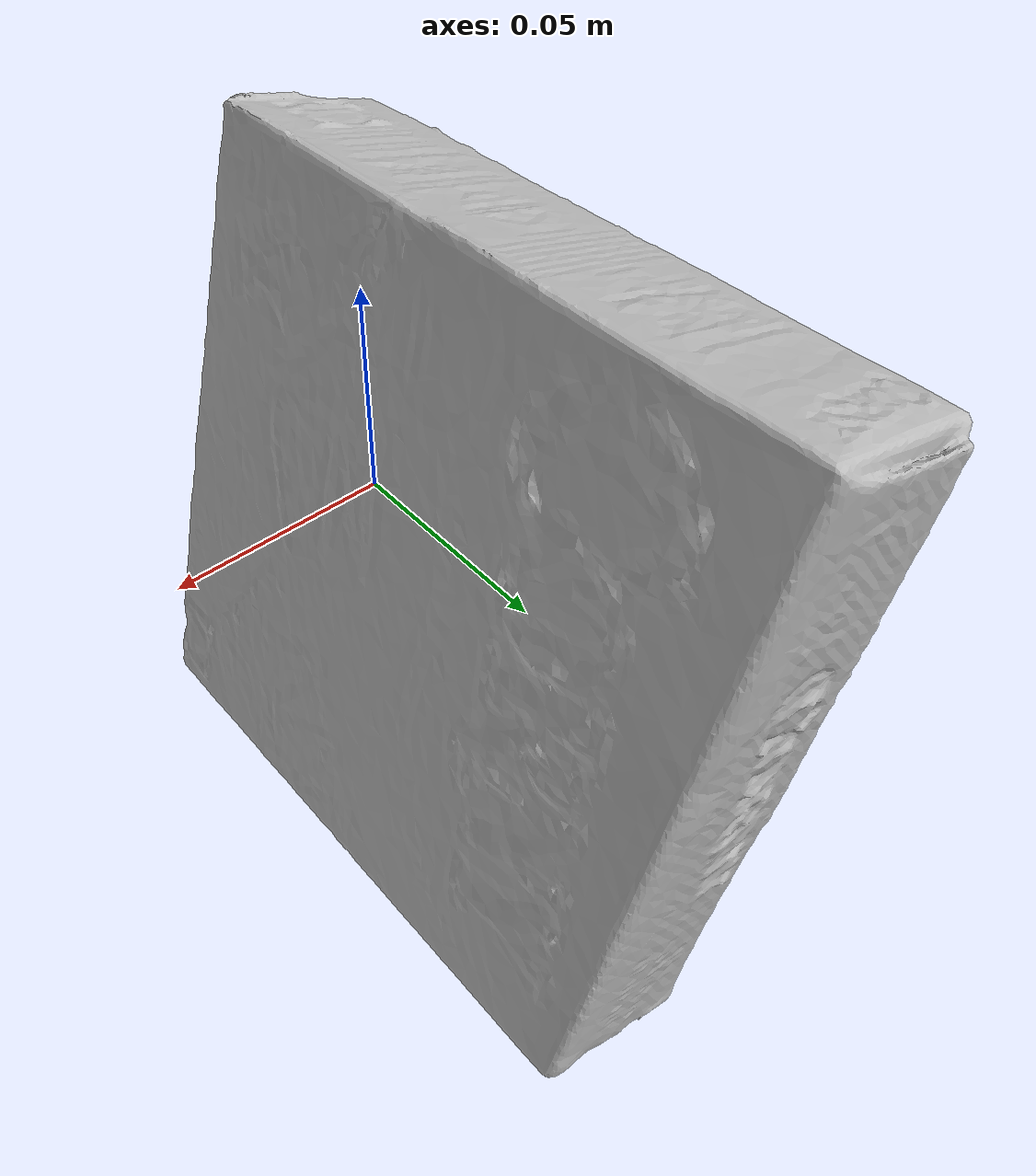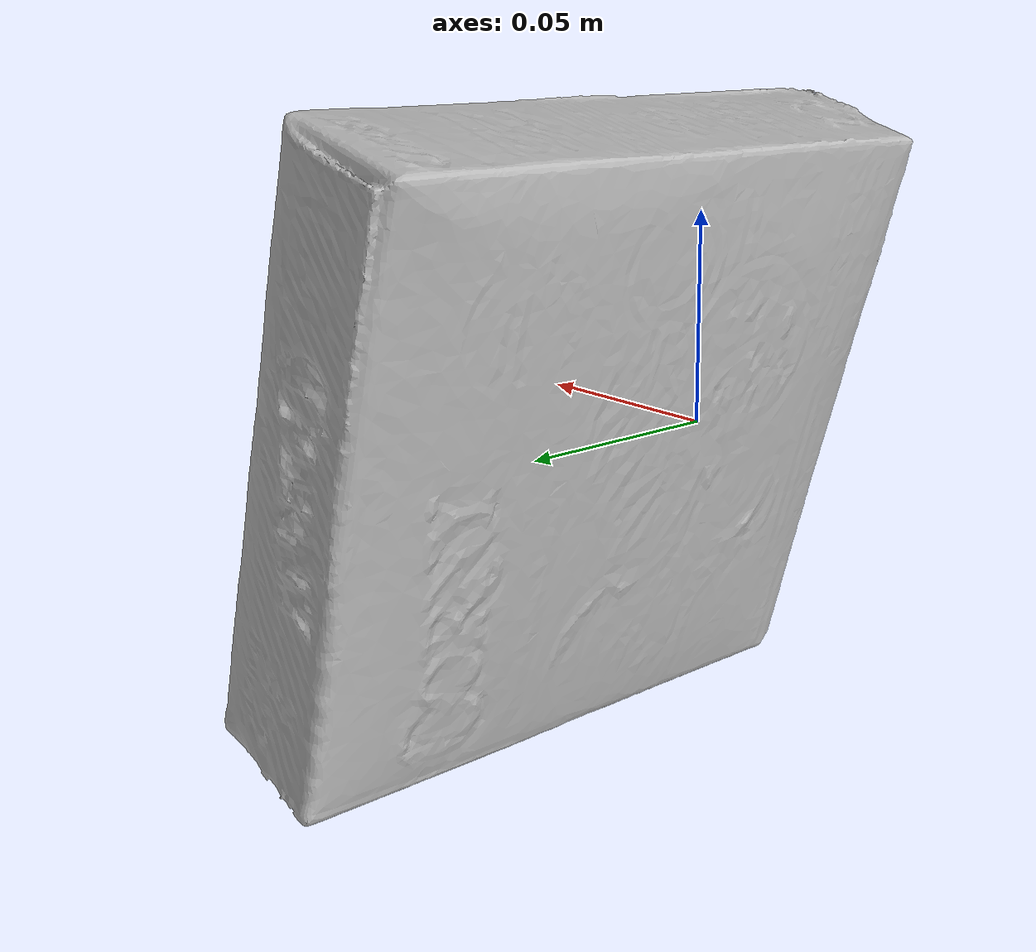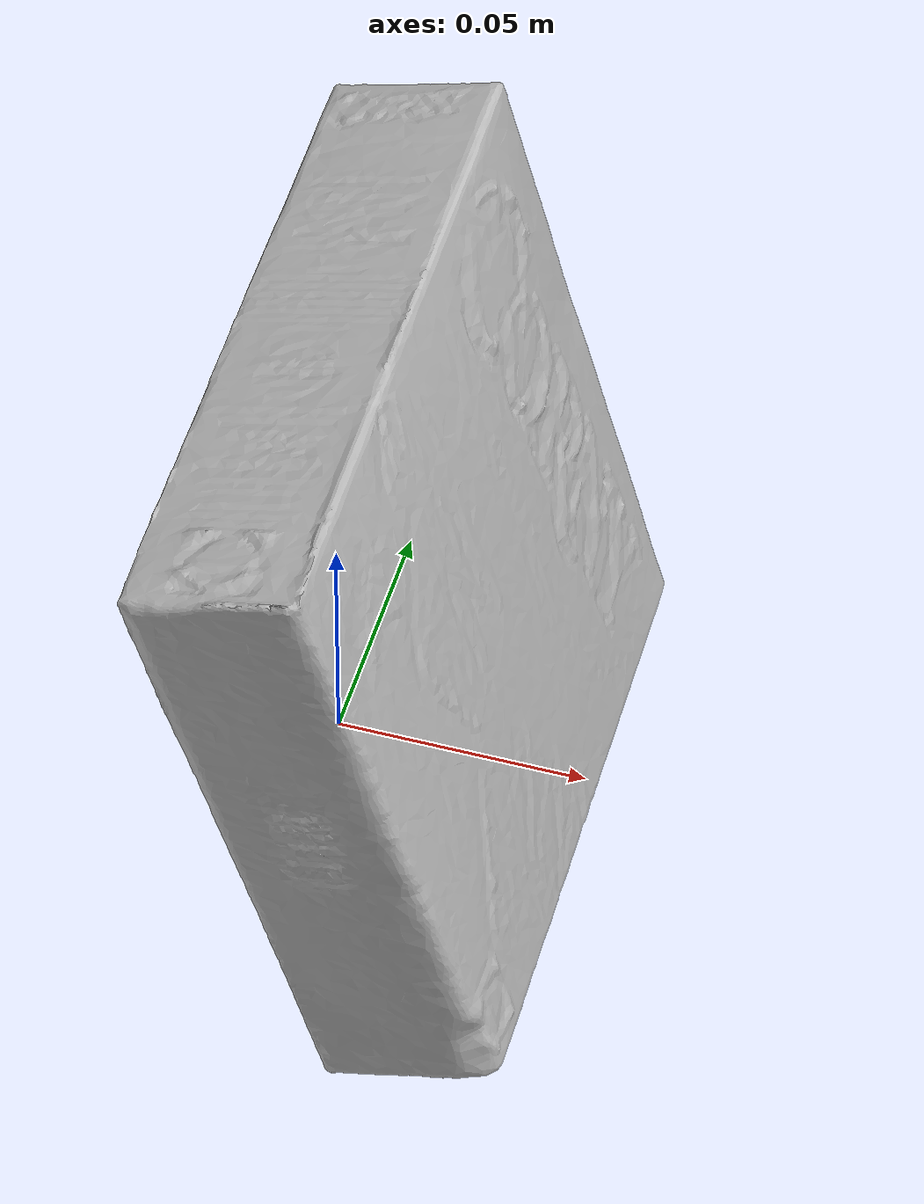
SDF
<?xml version='1.0'?>
<sdf version="1.4">
  <model name="MuesliBars">
    <static>false</static>
    <link name="link">
      <inertial>
        <pose>0.004599629154390811 0.03640892176228583 0.003999631485671236 1.5750989694586124 0.2763859047758947 -3.133084328311123</pose>
        <mass>0.08282295779978097</mass>
        <inertia>
          <ixx>0.00027827944924907374</ixx>
          <ixy>3.4244365316704746e-20</ixy>
          <ixz>-2.858637690538596e-20</ixz>
          <iyy>0.00015304886486157345</iyy>
          <iyz>8.205152550121319e-20</iyz>
          <izz>0.00014734765344953695</izz>
        </inertia>
      </inertial>
      <collision name="collision">
        <geometry>
          <mesh>
            <!-- Use a downsampled mesh for collisions -->
            <uri>model:///MuesliBars/MuesliBars_250_collision.obj</uri>
	        </mesh>
        </geometry>
        <surface>
      </surface>
      </collision>
      <visual name="visual">
        <geometry>
          <mesh>
            <uri>model:///MuesliBars/MuesliBars_25k_tex.obj</uri>
	        </mesh>
        </geometry>
        <material>
          <script>
            <uri>model:///MuesliBars/MuesliBars.material</uri>
            <name>MuesliBars</name>
          </script>
        </material>
      </visual>
    </link>
  </model>
</sdf>
